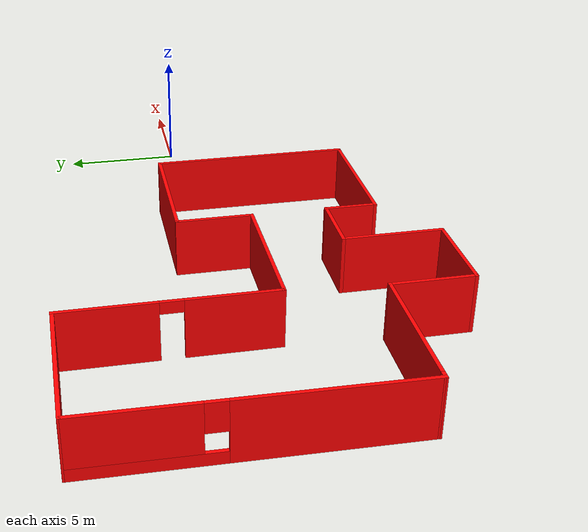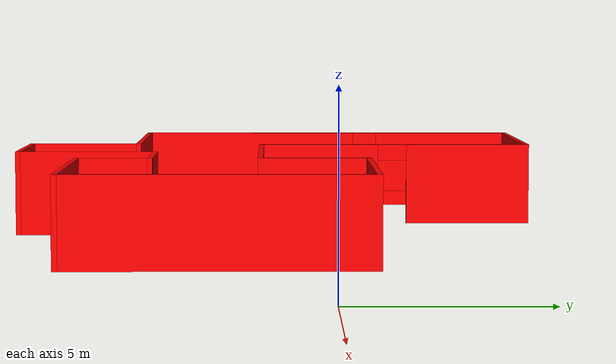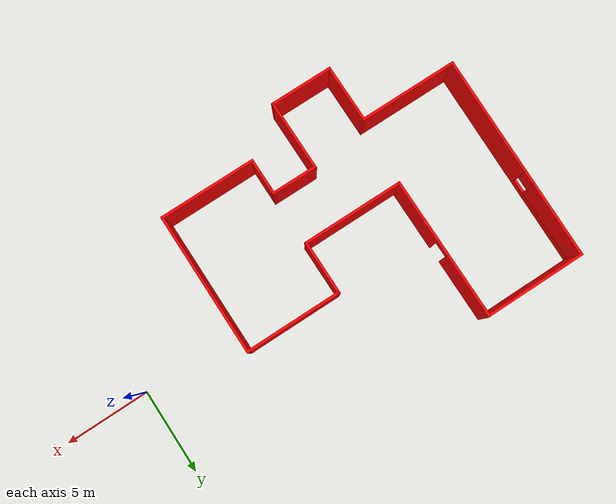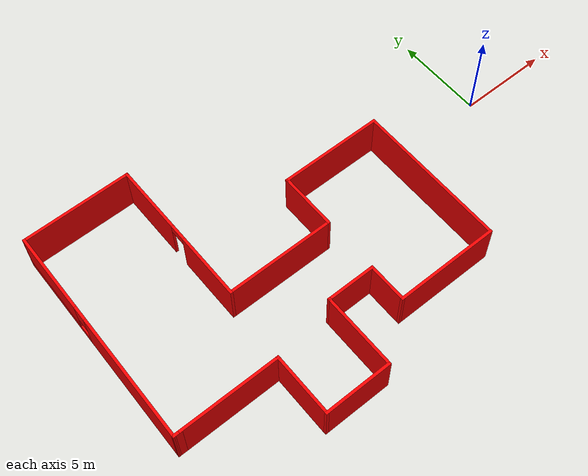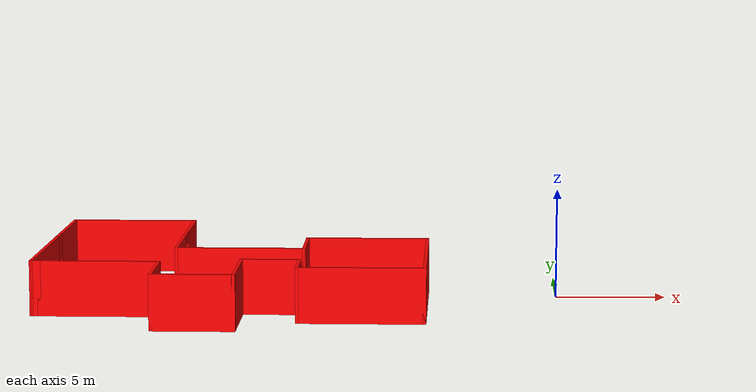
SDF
<?xml version='1.0'?>
<sdf version='1.6'>
  <model name='Building'>
    <pose frame=''>-14.7251 -1.28062 0 0 -0 0</pose>
    <link name='Wall_0'>
      <collision name='Wall_0_Collision'>
        <geometry>
          <box>
            <size>6 0.15 2.5</size>
          </box>
        </geometry>
        <pose frame=''>0 0 1.25 0 -0 0</pose>
      </collision>
      <visual name='Wall_0_Visual'>
        <pose frame=''>0 0 1.25 0 -0 0</pose>
        <geometry>
          <box>
            <size>6 0.15 2.5</size>
          </box>
        </geometry>
        <material>
          <script>
            <uri>file://media/materials/scripts/gazebo.material</uri>
            <name>Gazebo/Grey</name>
          </script>
          <ambient>1 0 0 1</ambient>
        </material>
        <meta>
          <layer>0</layer>
        </meta>
      </visual>
      <pose frame=''>-5.62439 7.79939 0 0 -0 0</pose>
    </link>
    <link name='Wall_1'>
      <pose frame=''>-2.69939 3.62439 0 0 0 -1.5708</pose>
      <visual name='Wall_1_Visual_0'>
        <pose frame=''>-2.31887 0 1.25 0 -0 0</pose>
        <geometry>
          <box>
            <size>3.86226 0.15 2.5</size>
          </box>
        </geometry>
        <material>
          <script>
            <uri>file://media/materials/scripts/gazebo.material</uri>
            <name>Gazebo/Grey</name>
          </script>
          <ambient>1 0 0 1</ambient>
        </material>
        <meta>
          <layer>0</layer>
        </meta>
      </visual>
      <collision name='Wall_1_Collision_0'>
        <geometry>
          <box>
            <size>3.86226 0.15 2.5</size>
          </box>
        </geometry>
        <pose frame=''>-2.31887 0 1.25 0 -0 0</pose>
      </collision>
      <visual name='Wall_1_Visual_1'>
        <pose frame=''>2.38113 0 1.25 0 -0 0</pose>
        <geometry>
          <box>
            <size>3.73774 0.15 2.5</size>
          </box>
        </geometry>
        <material>
          <script>
            <uri>file://media/materials/scripts/gazebo.material</uri>
            <name>Gazebo/Grey</name>
          </script>
          <ambient>1 0 0 1</ambient>
        </material>
        <meta>
          <layer>0</layer>
        </meta>
      </visual>
      <collision name='Wall_1_Collision_1'>
        <geometry>
          <box>
            <size>3.73774 0.15 2.5</size>
          </box>
        </geometry>
        <pose frame=''>2.38113 0 1.25 0 -0 0</pose>
      </collision>
      <visual name='Wall_1_Visual_2'>
        <pose frame=''>0.062263 0 2.25 0 -0 0</pose>
        <geometry>
          <box>
            <size>0.9 0.15 0.5</size>
          </box>
        </geometry>
        <material>
          <script>
            <uri>file://media/materials/scripts/gazebo.material</uri>
            <name>Gazebo/Grey</name>
          </script>
          <ambient>1 0 0 1</ambient>
        </material>
        <meta>
          <layer>0</layer>
        </meta>
      </visual>
      <collision name='Wall_1_Collision_2'>
        <geometry>
          <box>
            <size>0.9 0.15 0.5</size>
          </box>
        </geometry>
        <pose frame=''>0.062263 0 2.25 0 -0 0</pose>
      </collision>
    </link>
    <link name='Wall_10'>
      <collision name='Wall_10_Collision'>
        <geometry>
          <box>
            <size>3.75 0.15 2.5</size>
          </box>
        </geometry>
        <pose frame=''>0 0 1.25 0 -0 0</pose>
      </collision>
      <visual name='Wall_10_Visual'>
        <pose frame=''>0 0 1.25 0 -0 0</pose>
        <geometry>
          <box>
            <size>3.75 0.15 2.5</size>
          </box>
        </geometry>
        <material>
          <script>
            <uri>file://media/materials/scripts/gazebo.material</uri>
            <name>Gazebo/Grey</name>
          </script>
          <ambient>1 0 0 1</ambient>
        </material>
        <meta>
          <layer>0</layer>
        </meta>
      </visual>
      <pose frame=''>-1.24939 -7.80061 0 0 -0 3.14159</pose>
    </link>
    <link name='Wall_11'>
      <collision name='Wall_11_Collision'>
        <geometry>
          <box>
            <size>3.5 0.15 2.5</size>
          </box>
        </geometry>
        <pose frame=''>0 0 1.25 0 -0 0</pose>
      </collision>
      <visual name='Wall_11_Visual'>
        <pose frame=''>0 0 1.25 0 -0 0</pose>
        <geometry>
          <box>
            <size>3.5 0.15 2.5</size>
          </box>
        </geometry>
        <material>
          <script>
            <uri>file://media/materials/scripts/gazebo.material</uri>
            <name>Gazebo/Grey</name>
          </script>
          <ambient>1 0 0 1</ambient>
        </material>
        <meta>
          <layer>0</layer>
        </meta>
      </visual>
      <pose frame=''>-3.04939 -6.12561 0 0 -0 1.5708</pose>
    </link>
    <link name='Wall_12'>
      <collision name='Wall_12_Collision'>
        <geometry>
          <box>
            <size>5.5 0.15 2.5</size>
          </box>
        </geometry>
        <pose frame=''>0 0 1.25 0 -0 0</pose>
      </collision>
      <visual name='Wall_12_Visual'>
        <pose frame=''>0 0 1.25 0 -0 0</pose>
        <geometry>
          <box>
            <size>5.5 0.15 2.5</size>
          </box>
        </geometry>
        <material>
          <script>
            <uri>file://media/materials/scripts/gazebo.material</uri>
            <name>Gazebo/Grey</name>
          </script>
          <ambient>1 0 0 1</ambient>
        </material>
        <meta>
          <layer>0</layer>
        </meta>
      </visual>
      <pose frame=''>-5.72439 -4.45061 0 0 -0 3.14159</pose>
    </link>
    <link name='Wall_13'>
      <collision name='Wall_13_Collision'>
        <geometry>
          <box>
            <size>0.5 0.15 2.5</size>
          </box>
        </geometry>
        <pose frame=''>0 0 1.25 0 -0 0</pose>
      </collision>
      <visual name='Wall_13_Visual'>
        <pose frame=''>0 0 1.25 0 -0 0</pose>
        <geometry>
          <box>
            <size>0.5 0.15 2.5</size>
          </box>
        </geometry>
        <material>
          <script>
            <uri>file://media/materials/scripts/gazebo.material</uri>
            <name>Gazebo/Grey</name>
          </script>
          <ambient>1 0 0 1</ambient>
        </material>
        <meta>
          <layer>0</layer>
        </meta>
      </visual>
      <pose frame=''>-8.57439 -4.45061 0 0 -0 3.14159</pose>
    </link>
    <link name='Wall_14'>
      <pose frame=''>-8.64939 1.67439 0 0 -0 1.55447</pose>
      <visual name='Wall_14_Visual_0'>
        <pose frame=''>-2.65769 0 1.25 0 -0 0</pose>
        <geometry>
          <box>
            <size>7.08626 0.15 2.5</size>
          </box>
        </geometry>
        <material>
          <script>
            <uri>file://media/materials/scripts/gazebo.material</uri>
            <name>Gazebo/Grey</name>
          </script>
          <ambient>1 0 0 1</ambient>
        </material>
        <meta>
          <layer>0</layer>
        </meta>
      </visual>
      <collision name='Wall_14_Collision_0'>
        <geometry>
          <box>
            <size>7.08626 0.15 2.5</size>
          </box>
        </geometry>
        <pose frame=''>-2.65769 0 1.25 0 -0 0</pose>
      </collision>
      <visual name='Wall_14_Visual_1'>
        <pose frame=''>3.54313 0 0.25 0 -0 0</pose>
        <geometry>
          <box>
            <size>5.31538 0.15 0.5</size>
          </box>
        </geometry>
        <material>
          <script>
            <uri>file://media/materials/scripts/gazebo.material</uri>
            <name>Gazebo/Grey</name>
          </script>
          <ambient>1 0 0 1</ambient>
        </material>
        <meta>
          <layer>0</layer>
        </meta>
      </visual>
      <collision name='Wall_14_Collision_1'>
        <geometry>
          <box>
            <size>5.31538 0.15 0.5</size>
          </box>
        </geometry>
        <pose frame=''>3.54313 0 0.25 0 -0 0</pose>
      </collision>
      <visual name='Wall_14_Visual_2'>
        <pose frame=''>3.94313 0 1.5 0 -0 0</pose>
        <geometry>
          <box>
            <size>4.51538 0.15 2</size>
          </box>
        </geometry>
        <material>
          <script>
            <uri>file://media/materials/scripts/gazebo.material</uri>
            <name>Gazebo/Grey</name>
          </script>
          <ambient>1 0 0 1</ambient>
        </material>
        <meta>
          <layer>0</layer>
        </meta>
      </visual>
      <collision name='Wall_14_Collision_2'>
        <geometry>
          <box>
            <size>4.51538 0.15 2</size>
          </box>
        </geometry>
        <pose frame=''>3.94313 0 1.5 0 -0 0</pose>
      </collision>
      <visual name='Wall_14_Visual_3'>
        <pose frame=''>1.28544 0 1.9 0 -0 0</pose>
        <geometry>
          <box>
            <size>0.8 0.15 1.2</size>
          </box>
        </geometry>
        <material>
          <script>
            <uri>file://media/materials/scripts/gazebo.material</uri>
            <name>Gazebo/Grey</name>
          </script>
          <ambient>1 0 0 1</ambient>
        </material>
        <meta>
          <layer>0</layer>
        </meta>
      </visual>
      <collision name='Wall_14_Collision_3'>
        <geometry>
          <box>
            <size>0.8 0.15 1.2</size>
          </box>
        </geometry>
        <pose frame=''>1.28544 0 1.9 0 -0 0</pose>
      </collision>
    </link>
    <link name='Wall_2'>
      <collision name='Wall_2_Collision'>
        <geometry>
          <box>
            <size>6 0.15 2.5</size>
          </box>
        </geometry>
        <pose frame=''>0 0 1.25 0 -0 0</pose>
      </collision>
      <visual name='Wall_2_Visual'>
        <pose frame=''>0 0 1.25 0 -0 0</pose>
        <geometry>
          <box>
            <size>6 0.15 2.5</size>
          </box>
        </geometry>
        <material>
          <script>
            <uri>file://media/materials/scripts/gazebo.material</uri>
            <name>Gazebo/Grey</name>
          </script>
          <ambient>1 0 0 1</ambient>
        </material>
        <meta>
          <layer>0</layer>
        </meta>
      </visual>
      <pose frame=''>0.225607 -0.550607 0 0 -0 0</pose>
    </link>
    <link name='Wall_3'>
      <collision name='Wall_3_Collision'>
        <geometry>
          <box>
            <size>3.25 0.15 2.5</size>
          </box>
        </geometry>
        <pose frame=''>0 0 1.25 0 -0 0</pose>
      </collision>
      <visual name='Wall_3_Visual'>
        <pose frame=''>0 0 1.25 0 -0 0</pose>
        <geometry>
          <box>
            <size>3.25 0.15 2.5</size>
          </box>
        </geometry>
        <material>
          <script>
            <uri>file://media/materials/scripts/gazebo.material</uri>
            <name>Gazebo/Grey</name>
          </script>
          <ambient>1 0 0 1</ambient>
        </material>
        <meta>
          <layer>0</layer>
        </meta>
      </visual>
      <pose frame=''>3.15061 0.999393 0 0 -0 1.5708</pose>
    </link>
    <link name='Wall_4'>
      <collision name='Wall_4_Collision'>
        <geometry>
          <box>
            <size>5.75 0.15 2.5</size>
          </box>
        </geometry>
        <pose frame=''>0 0 1.25 0 -0 0</pose>
      </collision>
      <visual name='Wall_4_Visual'>
        <pose frame=''>0 0 1.25 0 -0 0</pose>
        <geometry>
          <box>
            <size>5.75 0.15 2.5</size>
          </box>
        </geometry>
        <material>
          <script>
            <uri>file://media/materials/scripts/gazebo.material</uri>
            <name>Gazebo/Grey</name>
          </script>
          <ambient>1 0 0 1</ambient>
        </material>
        <meta>
          <layer>0</layer>
        </meta>
      </visual>
      <pose frame=''>5.95061 2.54939 0 0 -0 0</pose>
    </link>
    <link name='Wall_5'>
      <collision name='Wall_5_Collision'>
        <geometry>
          <box>
            <size>8.5 0.15 2.5</size>
          </box>
        </geometry>
        <pose frame=''>0 0 1.25 0 -0 0</pose>
      </collision>
      <visual name='Wall_5_Visual'>
        <pose frame=''>0 0 1.25 0 -0 0</pose>
        <geometry>
          <box>
            <size>8.5 0.15 2.5</size>
          </box>
        </geometry>
        <material>
          <script>
            <uri>file://media/materials/scripts/gazebo.material</uri>
            <name>Gazebo/Grey</name>
          </script>
          <ambient>1 0 0 1</ambient>
        </material>
        <meta>
          <layer>0</layer>
        </meta>
      </visual>
      <pose frame=''>8.75061 -1.62561 0 0 0 -1.5708</pose>
    </link>
    <link name='Wall_6'>
      <collision name='Wall_6_Collision'>
        <geometry>
          <box>
            <size>5.75 0.15 2.5</size>
          </box>
        </geometry>
        <pose frame=''>0 0 1.25 0 -0 0</pose>
      </collision>
      <visual name='Wall_6_Visual'>
        <pose frame=''>0 0 1.25 0 -0 0</pose>
        <geometry>
          <box>
            <size>5.75 0.15 2.5</size>
          </box>
        </geometry>
        <material>
          <script>
            <uri>file://media/materials/scripts/gazebo.material</uri>
            <name>Gazebo/Grey</name>
          </script>
          <ambient>1 0 0 1</ambient>
        </material>
        <meta>
          <layer>0</layer>
        </meta>
      </visual>
      <pose frame=''>5.95061 -5.80061 0 0 -0 3.14159</pose>
    </link>
    <link name='Wall_7'>
      <collision name='Wall_7_Collision'>
        <geometry>
          <box>
            <size>2.25 0.15 2.5</size>
          </box>
        </geometry>
        <pose frame=''>0 0 1.25 0 -0 0</pose>
      </collision>
      <visual name='Wall_7_Visual'>
        <pose frame=''>0 0 1.25 0 -0 0</pose>
        <geometry>
          <box>
            <size>2.25 0.15 2.5</size>
          </box>
        </geometry>
        <material>
          <script>
            <uri>file://media/materials/scripts/gazebo.material</uri>
            <name>Gazebo/Grey</name>
          </script>
          <ambient>1 0 0 1</ambient>
        </material>
        <meta>
          <layer>0</layer>
        </meta>
      </visual>
      <pose frame=''>3.15061 -4.75061 0 0 -0 1.5708</pose>
    </link>
    <link name='Wall_8'>
      <collision name='Wall_8_Collision'>
        <geometry>
          <box>
            <size>2.75 0.15 2.5</size>
          </box>
        </geometry>
        <pose frame=''>0 0 1.25 0 -0 0</pose>
      </collision>
      <visual name='Wall_8_Visual'>
        <pose frame=''>0 0 1.25 0 -0 0</pose>
        <geometry>
          <box>
            <size>2.75 0.15 2.5</size>
          </box>
        </geometry>
        <material>
          <script>
            <uri>file://media/materials/scripts/gazebo.material</uri>
            <name>Gazebo/Grey</name>
          </script>
          <ambient>1 0 0 1</ambient>
        </material>
        <meta>
          <layer>0</layer>
        </meta>
      </visual>
      <pose frame=''>1.85061 -3.70061 0 0 -0 3.14159</pose>
    </link>
    <link name='Wall_9'>
      <collision name='Wall_9_Collision'>
        <geometry>
          <box>
            <size>4.25 0.15 2.5</size>
          </box>
        </geometry>
        <pose frame=''>0 0 1.25 0 -0 0</pose>
      </collision>
      <visual name='Wall_9_Visual'>
        <pose frame=''>0 0 1.25 0 -0 0</pose>
        <geometry>
          <box>
            <size>4.25 0.15 2.5</size>
          </box>
        </geometry>
        <material>
          <script>
            <uri>file://media/materials/scripts/gazebo.material</uri>
            <name>Gazebo/Grey</name>
          </script>
          <ambient>1 0 0 1</ambient>
        </material>
        <meta>
          <layer>0</layer>
        </meta>
      </visual>
      <pose frame=''>0.550607 -5.75061 0 0 0 -1.5708</pose>
    </link>
    <static>1</static>
  </model>
</sdf>
